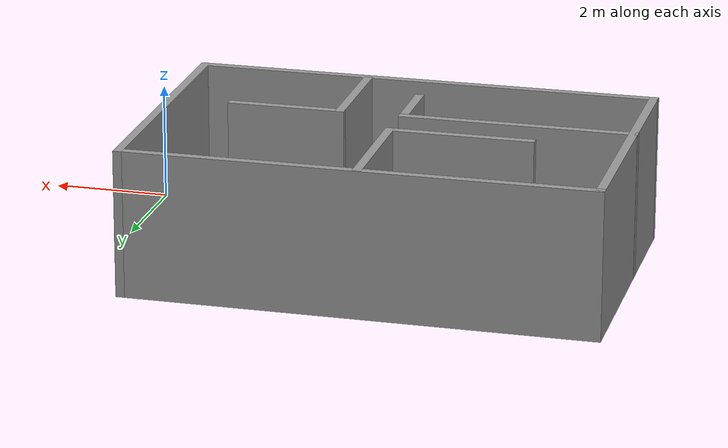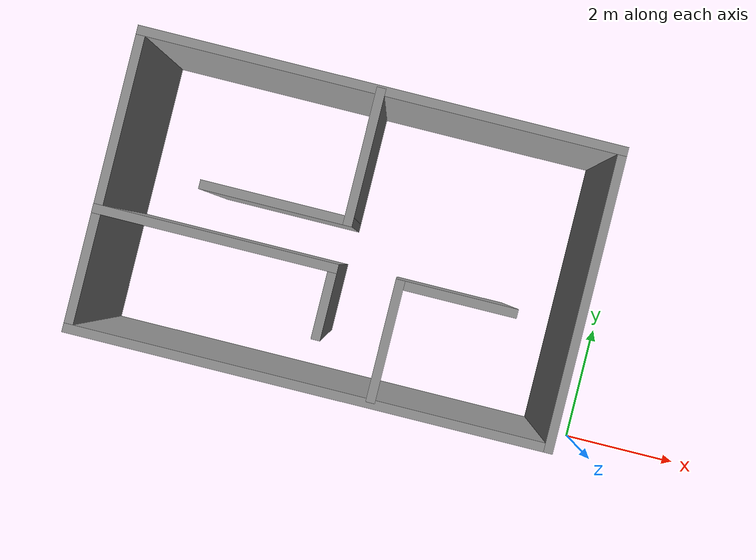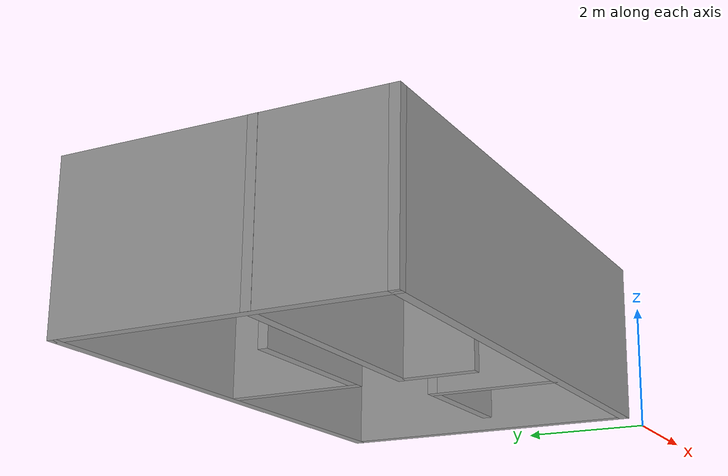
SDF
<?xml version='1.0'?>
<sdf version='1.7'>
  <model name='rome'>
    <pose>-4.35017 2.50165 0 0 -0 0</pose>
    <link name='Wall_10'>
      <collision name='Wall_10_Collision'>
        <geometry>
          <box>
            <size>2.25 0.15 2.5</size>
          </box>
        </geometry>
        <pose>0 0 1.25 0 -0 0</pose>
      </collision>
      <visual name='Wall_10_Visual'>
        <pose>0 0 1.25 0 -0 0</pose>
        <geometry>
          <box>
            <size>2.25 0.15 2.5</size>
          </box>
        </geometry>
        <material>
          <script>
            <uri>file://media/materials/scripts/gazebo.material</uri>
            <name>Gazebo/Grey</name>
          </script>
          <ambient>1 1 1 1</ambient>
        </material>
        <meta>
          <layer>0</layer>
        </meta>
      </visual>
      <pose>-0.373467 1.3447 0 0 -0 -1.5708</pose>
    </link>
    <link name='Wall_11'>
      <collision name='Wall_11_Collision'>
        <geometry>
          <box>
            <size>2.5 0.15 2.5</size>
          </box>
        </geometry>
        <pose>0 0 1.25 0 -0 0</pose>
      </collision>
      <visual name='Wall_11_Visual'>
        <pose>0 0 1.25 0 -0 0</pose>
        <geometry>
          <box>
            <size>2.5 0.15 2.5</size>
          </box>
        </geometry>
        <material>
          <script>
            <uri>file://media/materials/scripts/gazebo.material</uri>
            <name>Gazebo/Grey</name>
          </script>
          <ambient>1 1 1 1</ambient>
        </material>
        <meta>
          <layer>0</layer>
        </meta>
      </visual>
      <pose>-1.54847 0.294699 0 0 -0 3.14159</pose>
    </link>
    <link name='Wall_15'>
      <collision name='Wall_15_Collision'>
        <geometry>
          <box>
            <size>4 0.15 2.5</size>
          </box>
        </geometry>
        <pose>0 0 1.25 0 -0 0</pose>
      </collision>
      <visual name='Wall_15_Visual'>
        <pose>0 0 1.25 0 -0 0</pose>
        <geometry>
          <box>
            <size>4 0.15 2.5</size>
          </box>
        </geometry>
        <material>
          <script>
            <uri>file://media/materials/scripts/gazebo.material</uri>
            <name>Gazebo/Grey</name>
          </script>
          <ambient>1 1 1 1</ambient>
        </material>
        <meta>
          <layer>0</layer>
        </meta>
      </visual>
      <pose>-2.35017 -0.478647 0 0 -0 0</pose>
    </link>
    <link name='Wall_16'>
      <collision name='Wall_16_Collision'>
        <geometry>
          <box>
            <size>1.25 0.15 2.5</size>
          </box>
        </geometry>
        <pose>0 0 1.25 0 -0 0</pose>
      </collision>
      <visual name='Wall_16_Visual'>
        <pose>0 0 1.25 0 -0 0</pose>
        <geometry>
          <box>
            <size>1.25 0.15 2.5</size>
          </box>
        </geometry>
        <material>
          <script>
            <uri>file://media/materials/scripts/gazebo.material</uri>
            <name>Gazebo/Grey</name>
          </script>
          <ambient>1 1 1 1</ambient>
        </material>
        <meta>
          <layer>0</layer>
        </meta>
      </visual>
      <pose>-0.425169 -1.02865 0 0 -0 -1.5708</pose>
    </link>
    <link name='Wall_18'>
      <collision name='Wall_18_Collision'>
        <geometry>
          <box>
            <size>2 0.15 2.5</size>
          </box>
        </geometry>
        <pose>0 0 1.25 0 -0 0</pose>
      </collision>
      <visual name='Wall_18_Visual'>
        <pose>0 0 1.25 0 -0 0</pose>
        <geometry>
          <box>
            <size>2 0.15 2.5</size>
          </box>
        </geometry>
        <material>
          <script>
            <uri>file://media/materials/scripts/gazebo.material</uri>
            <name>Gazebo/Grey</name>
          </script>
          <ambient>1 1 1 1</ambient>
        </material>
        <meta>
          <layer>0</layer>
        </meta>
      </visual>
      <pose>0.654888 -1.40365 0 0 -0 -1.5708</pose>
    </link>
    <link name='Wall_20'>
      <collision name='Wall_20_Collision'>
        <geometry>
          <box>
            <size>2 0.15 2.5</size>
          </box>
        </geometry>
        <pose>0 0 1.25 0 -0 0</pose>
      </collision>
      <visual name='Wall_20_Visual'>
        <pose>0 0 1.25 0 -0 0</pose>
        <geometry>
          <box>
            <size>2 0.15 2.5</size>
          </box>
        </geometry>
        <material>
          <script>
            <uri>file://media/materials/scripts/gazebo.material</uri>
            <name>Gazebo/Grey</name>
          </script>
          <ambient>1 1 1 1</ambient>
        </material>
        <meta>
          <layer>0</layer>
        </meta>
      </visual>
      <pose>1.57989 -0.478647 0 0 -0 0</pose>
    </link>
    <link name='Wall_5'>
      <collision name='Wall_5_Collision'>
        <geometry>
          <box>
            <size>8 0.15 2.5</size>
          </box>
        </geometry>
        <pose>0 0 1.25 0 -0 0</pose>
      </collision>
      <visual name='Wall_5_Visual'>
        <pose>0 0 1.25 0 -0 0</pose>
        <geometry>
          <box>
            <size>8 0.15 2.5</size>
          </box>
        </geometry>
        <material>
          <script>
            <uri>file://media/materials/scripts/gazebo.material</uri>
            <name>Gazebo/Grey</name>
          </script>
          <ambient>1 1 1 1</ambient>
        </material>
        <meta>
          <layer>0</layer>
        </meta>
      </visual>
      <pose>-0.347839 2.42665 0 0 -0 0</pose>
    </link>
    <link name='Wall_6'>
      <collision name='Wall_6_Collision'>
        <geometry>
          <box>
            <size>5 0.15 2.5</size>
          </box>
        </geometry>
        <pose>0 0 1.25 0 -0 0</pose>
      </collision>
      <visual name='Wall_6_Visual'>
        <pose>0 0 1.25 0 -0 0</pose>
        <geometry>
          <box>
            <size>5 0.15 2.5</size>
          </box>
        </geometry>
        <material>
          <script>
            <uri>file://media/materials/scripts/gazebo.material</uri>
            <name>Gazebo/Grey</name>
          </script>
          <ambient>1 1 1 1</ambient>
        </material>
        <meta>
          <layer>0</layer>
        </meta>
      </visual>
      <pose>3.57716 0.001647 0 0 -0 -1.5708</pose>
    </link>
    <link name='Wall_7'>
      <collision name='Wall_7_Collision'>
        <geometry>
          <box>
            <size>8 0.15 2.5</size>
          </box>
        </geometry>
        <pose>0 0 1.25 0 -0 0</pose>
      </collision>
      <visual name='Wall_7_Visual'>
        <pose>0 0 1.25 0 -0 0</pose>
        <geometry>
          <box>
            <size>8 0.15 2.5</size>
          </box>
        </geometry>
        <material>
          <script>
            <uri>file://media/materials/scripts/gazebo.material</uri>
            <name>Gazebo/Grey</name>
          </script>
          <ambient>1 1 1 1</ambient>
        </material>
        <meta>
          <layer>0</layer>
        </meta>
      </visual>
      <pose>-0.347839 -2.42335 0 0 -0 3.14159</pose>
    </link>
    <link name='Wall_8'>
      <collision name='Wall_8_Collision'>
        <geometry>
          <box>
            <size>5 0.15 2.5</size>
          </box>
        </geometry>
        <pose>0 0 1.25 0 -0 0</pose>
      </collision>
      <visual name='Wall_8_Visual'>
        <pose>0 0 1.25 0 -0 0</pose>
        <geometry>
          <box>
            <size>5 0.15 2.5</size>
          </box>
        </geometry>
        <material>
          <script>
            <uri>file://media/materials/scripts/gazebo.material</uri>
            <name>Gazebo/Grey</name>
          </script>
          <ambient>1 1 1 1</ambient>
        </material>
        <meta>
          <layer>0</layer>
        </meta>
      </visual>
      <pose>-4.27284 0.001647 0 0 -0 1.5708</pose>
    </link>
    <static>1</static>
  </model>
</sdf>
